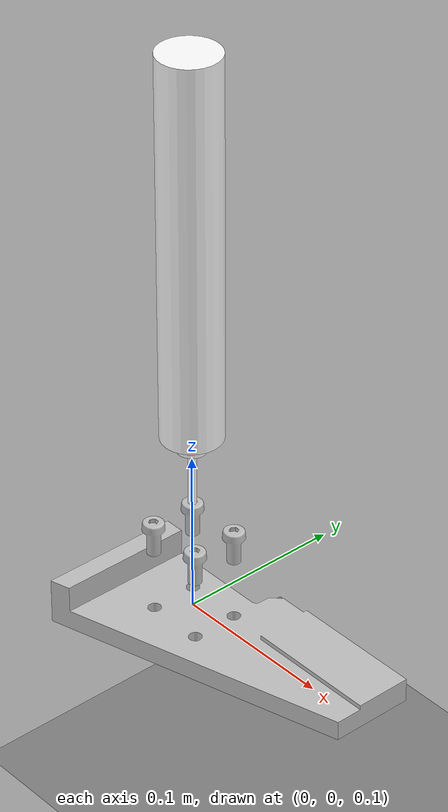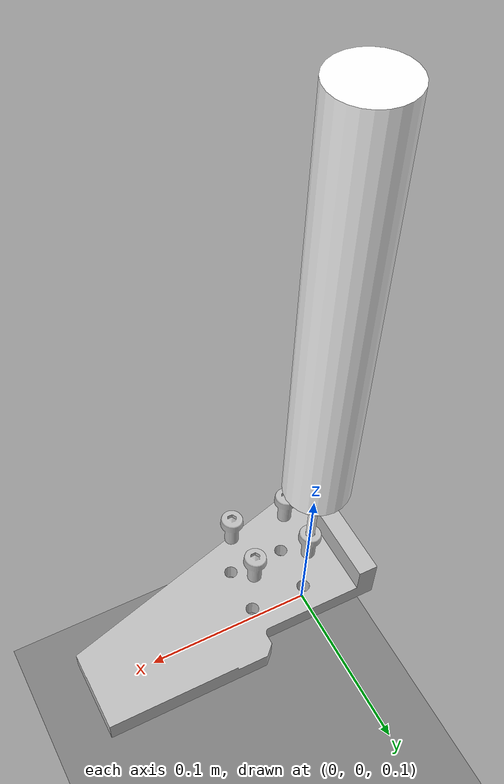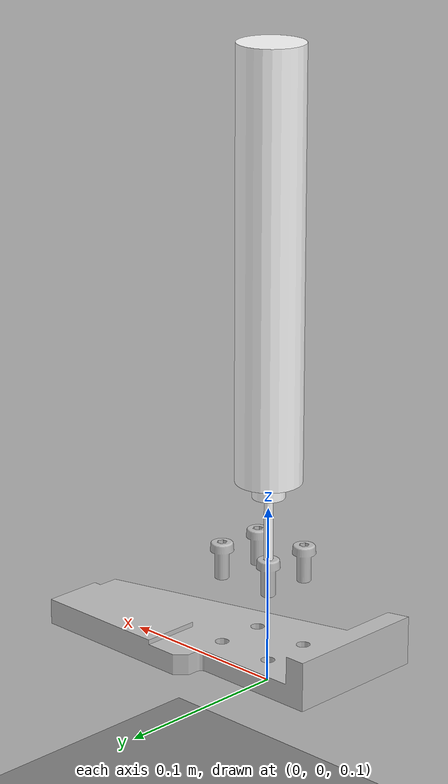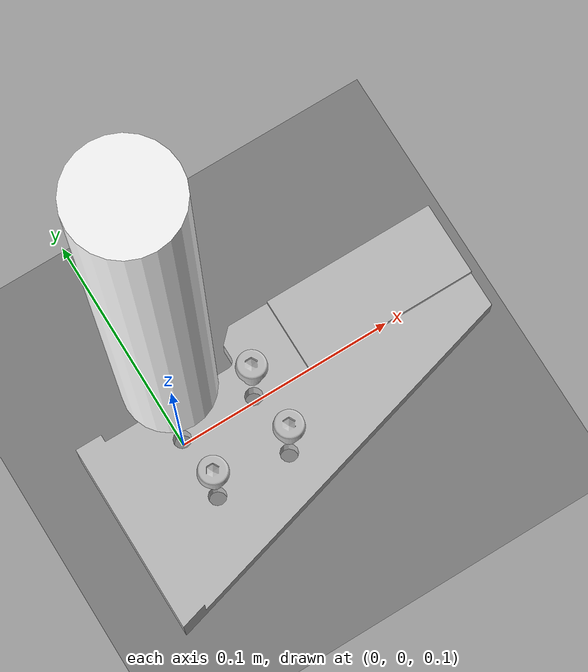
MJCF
<mujoco model="vccd_write">
    <compiler meshdir="../../meshes/bolt_up" angle="radian" eulerseq="zyx"/>
    <asset>
        <texture type="2d" name="groundplane" builtin="checker" mark="edge" rgb1="0.5 0.5 0.5" rgb2="0.5 0.5 0.5"
                markrgb="0.3 0.3 0.3" width="300" height="300"/>
        <material name="groundplane" texture="groundplane" texuniform="true" texrepeat="2 2"/>
        <material name="red_light" rgba="1.0 0.0 0.0 1.0" emission="1.0" />
        <material name="green_light" rgba="0.0 1.0 0.0 1.0" emission="1.0"/>
        <material name="yellow_light" rgba="1.0 1.0 0.0 1.0" emission="1.0" />
        <mesh name="board" file="board.STL" scale="0.001 0.001 0.001"/>
        <mesh name="bolt" file="bolt_M8.STL" scale="0.001 0.001 0.001"/>

    </asset>
    <visual>
        <headlight diffuse="1.2 1.2 1.2" ambient="0.3 0.3 0.3" specular="0 0 0"/>
        <rgba haze="0.15 0.25 0.35 1"/>
        <global azimuth="90" elevation="-20"/>
        <quality shadowsize="8192"/>
    </visual>
    <worldbody>
        <light pos="2.058333333 1.275 3" dir="0 0 -1" directional="false"   diffuse=".2 .2 .2"/>
        <light pos="-2.058333333 1.275 3" dir="0 0 -1" directional="false"  diffuse=".2 .2 .2"/>
        <light pos="2.058333333 -1.275 3" dir="0 0 -1" directional="false"  diffuse=".2 .2 .2"/>
        <light pos="-2.058333333 -1.275 3" dir="0 0 -1" directional="false" diffuse=".2 .2 .2"/>
        <light pos="-.225 1.5 3" dir="0 0 -1" directional="false"           diffuse=".2 .2 .2"/>
        <geom name="ground" pos="0 0 0" size="1.98 1.79 0.005" type="plane" material="groundplane" condim="1"/>

        <body name="board" pos="0 0 0.1" euler="0 0 0">
            <geom type="mesh" mesh="board" contype="0" conaffinity="0" rgba="0.75 0.75 0.75 1"/>
            <geom type="cylinder" pos=" 0.008 0 0.006" size="0.004 0.006" rgba="1 0 1 0" />
            <geom type="cylinder" pos=" -0.008 0 0.006" size="0.004 0.006" rgba="1 0 1 0" />
            <geom type="cylinder" pos=" 0 0.008 0.006" size="0.004 0.006" rgba="1 0 1 0" />
            <geom type="cylinder" pos=" 0 -0.008 0.006" size="0.004 0.006" rgba="1 0 1 0" />
            <geom type="cylinder" pos=" 0.0056 0.0056 0.006" size="0.004 0.006" rgba="1 0 1 0" />
            <geom type="cylinder" pos=" -0.0056 0.0056 0.006" size="0.004 0.006" rgba="1 0 1 0" />
            <geom type="cylinder" pos=" 0.0056 -0.0056 0.006" size="0.004 0.006" rgba="1 0 1 0" />
            <geom type="cylinder" pos=" -0.0056 -0.0056 0.006" size="0.004 0.006" rgba="1 0 1 0" />

            <geom type="cylinder" pos=" 0.0427 0 0.006" size="0.004 0.006" rgba="1 0 1 0" />
            <geom type="cylinder" pos=" 0.0267 0 0.006" size="0.004 0.006" rgba="1 0 1 0" />
            <geom type="cylinder" pos=" 0.0347 0.008 0.006" size="0.004 0.006" rgba="1 0 1 0" />
            <geom type="cylinder" pos=" 0.0347 -0.008 0.006" size="0.004 0.006" rgba="1 0 1 0" />
            <geom type="cylinder" pos=" 0.0403 0.0056 0.006" size="0.004 0.006" rgba="1 0 1 0" />
            <geom type="cylinder" pos=" 0.0291 0.0056 0.006" size="0.004 0.006" rgba="1 0 1 0" />
            <geom type="cylinder" pos=" 0.0403 -0.0056 0.006" size="0.004 0.006" rgba="1 0 1 0" />
            <geom type="cylinder" pos=" 0.0291 -0.0056 0.006" size="0.004 0.006" rgba="1 0 1 0" />

            <geom type="cylinder" pos=" 0.0427 -0.0281 0.006" size="0.004 0.006" rgba="1 0 1 0" />
            <geom type="cylinder" pos=" 0.0267 -0.0281 0.006" size="0.004 0.006" rgba="1 0 1 0" />
            <geom type="cylinder" pos=" 0.0347 -0.0361 0.006" size="0.004 0.006" rgba="1 0 1 0" />
            <geom type="cylinder" pos=" 0.0347 -0.0201 0.006" size="0.004 0.006" rgba="1 0 1 0" />
            <geom type="cylinder" pos=" 0.0403 -0.0225 0.006" size="0.004 0.006" rgba="1 0 1 0" />
            <geom type="cylinder" pos=" 0.0291 -0.0225 0.006" size="0.004 0.006" rgba="1 0 1 0" />
            <geom type="cylinder" pos=" 0.0403 -0.0337 0.006" size="0.004 0.006" rgba="1 0 1 0" />
            <geom type="cylinder" pos=" 0.0291 -0.0337 0.006" size="0.004 0.006" rgba="1 0 1 0" />

            <geom type="cylinder" pos=" 0.008 -0.0281 0.006" size="0.004 0.006" rgba="1 0 1 0" />
            <geom type="cylinder" pos=" -0.008  -0.0281 0.006" size="0.004 0.006" rgba="1 0 1 0" />
            <geom type="cylinder" pos=" 0 -0.0361 0.006" size="0.004 0.006" rgba="1 0 1 0" />
            <geom type="cylinder" pos=" 0 -0.0201 0.006" size="0.004 0.006" rgba="1 0 1 0" />
            <geom type="cylinder" pos=" 0.0056  -0.0225 0.006" size="0.004 0.006" rgba="1 0 1 0" />
            <geom type="cylinder" pos=" -0.0056 -0.0225 0.006" size="0.004 0.006" rgba="1 0 1 0" />
            <geom type="cylinder" pos=" 0.0056  -0.0337 0.006" size="0.004 0.006" rgba="1 0 1 0" />
            <geom type="cylinder" pos=" -0.0056 -0.0337 0.006" size="0.004 0.006" rgba="1 0 1 0" />

        </body>
        <body name="bolt_with_drive" pos="0 0 0.15" euler="0 1.57 0">
            <joint type="free"/>
            <geom type="mesh" mesh="bolt" contype="0" conaffinity="0" rgba="0.75 0.75 0.75 1"/>
            <geom type="cylinder" pos=" -0.008 0 0" size="0.004 0.008" euler="0 1.57 0" rgba="1 0 1 0" />
            <geom type="cylinder" pos=" -0.0185 0 0" size="0.006 0.0022" euler="0 1.57 0" rgba="1 0 1 0" />
            <geom type="cylinder" pos=" -0.0375 0 0" size="0.0025 0.019" euler="0 1.57 0" rgba="1 1 1 1" />
            <geom type="cylinder" pos=" -0.061 0 0" size="0.009 0.0045" euler="0 1.57 0" rgba="1 1 1 1" />
            <geom type="cylinder" pos=" -0.183 0 0" size="0.01825 0.1175" euler="0 1.57 0" rgba="1 1 1 1" />

        </body>
        <body name="bolt_1" pos="0.0347 0 0.15" euler="0 1.57 0">
            <joint type="free"/>
            <geom type="mesh" mesh="bolt" contype="0" conaffinity="0" rgba="0.75 0.75 0.75 1"/>
            <geom type="cylinder" pos=" -0.008 0 0" size="0.004 0.008" euler="0 1.57 0" rgba="1 0 1 0" />
            <geom type="cylinder" pos=" -0.0185 0 0" size="0.006 0.0022" euler="0 1.57 0" rgba="1 0 1 0" />
        </body>
        <body name="bolt_2" pos="0.0347 -0.0281 0.15" euler="0 1.57 0">
            <joint type="free"/>
            <geom type="mesh" mesh="bolt" contype="0" conaffinity="0" rgba="0.75 0.75 0.75 1"/>
            <geom type="cylinder" pos=" -0.008 0 0" size="0.004 0.008" euler="0 1.57 0" rgba="1 0 1 0" />
            <geom type="cylinder" pos=" -0.0185 0 0" size="0.006 0.0022" euler="0 1.57 0" rgba="1 0 1 0" />
        </body>
        <body name="bolt_3" pos="0 -0.0281 0.15" euler="0 1.57 0">
            <joint type="free"/>
            <geom type="mesh" mesh="bolt" contype="0" conaffinity="0" rgba="0.75 0.75 0.75 1"/>
            <geom type="cylinder" pos=" -0.008 0 0" size="0.004 0.008" euler="0 1.57 0" rgba="1 0 1 0" />
            <geom type="cylinder" pos=" -0.0185 0 0" size="0.006 0.0022" euler="0 1.57 0" rgba="1 0 1 0" />
        </body>

    </worldbody>

</mujoco>
